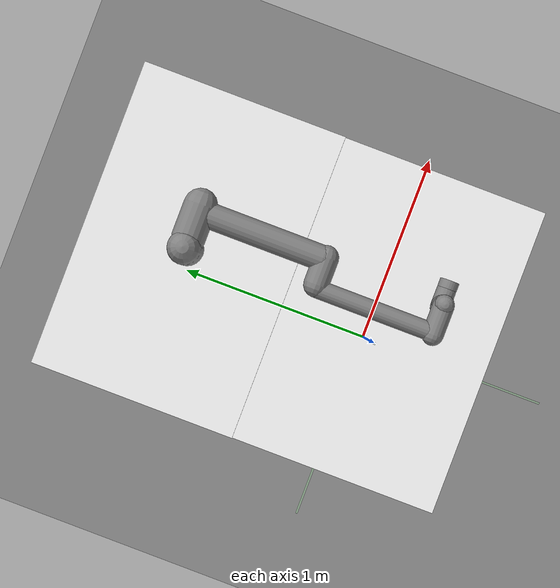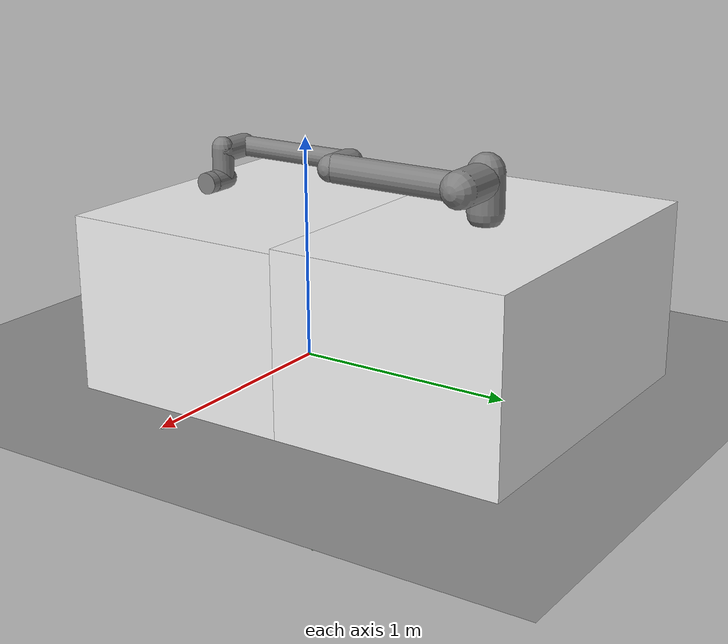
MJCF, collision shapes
<?xml version="1.0" encoding="utf-8"?>
<mujoco>
	<compiler angle="radian" coordinate="local" meshdir="meshes" texturedir="textures" autolimits="true"></compiler>
	<option timestep="0.002">
		<flag warmstart="enable"></flag>
	</option>

	<include file="shared.xml"></include>

	<include file="ur10e.xml"></include>

	<worldbody>
		<geom name="floor0" pos="0 0 0" size="10 10 1" type="plane" condim="3" material="floor_mat"></geom>
		<body name="floor0" pos="0 0 0">
			<site name="target0" pos="0 0 0.5" size="0.02 0.04 0.02" rgba="1 0 0 1" type="cylinder">
			</site>
		</body>

		<body pos="0.100 0.950 0.390" name="table0">
			<geom size="0.75 0.5 0.390" type="box" mass="2000" material="table_mat"></geom>
		</body>

		<body pos="0.100 -0.050 0.380" name="table1">
			<geom size="0.75 0.5 0.380" type="box" mass="2000" material="table_mat"></geom>
		</body>

		<light directional="true" ambient="0.2 0.2 0.2" diffuse="0.8 0.8 0.8" specular="0.3 0.3 0.3" castshadow="false" pos="0 0 4" dir="0 0 -1" name="light0"></light>
	</worldbody>
</mujoco>

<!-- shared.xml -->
<mujoco>
    <asset>
        <texture type="skybox" builtin="gradient" rgb1="0.44 0.85 0.56" rgb2="0.46 0.87 0.58" width="32" height="32"></texture>
        <texture name="texture_block" file="block.png" gridsize="3 4" gridlayout=".U..LFRB.D.."></texture>

        <material name="floor_mat" specular="0" shininess="0.5" reflectance="0" rgba="0.2 0.2 0.2 1"></material>
        <material name="table_mat" specular="0" shininess="0.5" reflectance="0" rgba="0.93 0.93 0.93 1"></material>
        <material name="block_mat" specular="0" shininess="0.5" reflectance="0" rgba="0.2 0.2 0.2 1"></material>
        <material name="puck_mat" specular="0" shininess="0.5" reflectance="0" rgba="0.2 0.2 0.2 1"></material>
        <material name="robot0:geomMat" shininess="0.03" specular="0.4"></material>
        <material name="robot0:gripper_finger_mat" shininess="0.03" specular="0.4" reflectance="0"></material>
        <material name="robot0:gripper_mat" shininess="0.03" specular="0.4" reflectance="0"></material>
        <material name="robot0:arm_mat" shininess="0.03" specular="0.4" reflectance="0"></material>
        <material name="robot0:head_mat" shininess="0.03" specular="0.4" reflectance="0"></material>
        <material name="robot0:torso_mat" shininess="0.03" specular="0.4" reflectance="0"></material>
        <material name="robot0:base_mat" shininess="0.03" specular="0.4" reflectance="0"></material>

    </asset>

    <equality>
        <weld body1="robot0:mocap" body2="eef" solimp="0.9 0.95 0.001" solref="0.02 1"></weld>
    </equality>

</mujoco>

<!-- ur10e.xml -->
<mujoco model="ur10e">

  <option integrator="implicitfast"/>

  <default>
    <default class="ur10e">
      <material specular="0.5" shininess="0.25"/>
      <joint axis="0 1 0" range="-6.28319 6.28319" armature="0.1"/>
      <position ctrlrange="-6.2831 6.2831"/>
      <general biastype="affine" ctrlrange="-6.2831 6.2831" gainprm="5000" biasprm="0 -5000 -500"/>
      <default class="size4">
        <joint damping="10"/>
        <general forcerange="-330 330"/>
      </default>
      <default class="size3">
        <joint damping="5"/>
        <general forcerange="-150 150"/>
        <default class="size3_limited">
          <joint range="-3.1415 3.1415"/>
          <general ctrlrange="-3.1415 3.1415"/>
        </default>
      </default>
      <default class="size2">
        <joint damping="2"/>
        <general forcerange="-56 56"/>
      </default>
      <default class="visual">
        <geom type="mesh" contype="0" conaffinity="0" group="2"/>
      </default>
      <default class="collision">
        <geom type="capsule" group="3"/>
        <default class="eef_collision">
          <geom type="cylinder"/>
        </default>
      </default>
      <site size="0.001" rgba="0.5 0.5 0.5 0.3" group="4"/>
    </default>
  </default>

  <asset>
    <material class="ur10e" name="black" rgba="0.033 0.033 0.033 1"/>
    <material class="ur10e" name="jointgray" rgba="0.278 0.278 0.278 1"/>
    <material class="ur10e" name="linkgray" rgba="0.82 0.82 0.82 1"/>
    <material class="ur10e" name="urblue" rgba="0.49 0.678 0.8 1"/>

    <mesh file="ur10e/base_0.obj" name="base_0"/>
    <mesh file="ur10e/base_1.obj" name="base_1"/>
    <mesh file="ur10e/shoulder_0.obj" name="shoulder_0"/>
    <mesh file="ur10e/shoulder_1.obj" name="shoulder_1"/>
    <mesh file="ur10e/shoulder_2.obj" name="shoulder_2"/>
    <mesh file="ur10e/upperarm_0.obj" name="upperarm_0"/>
    <mesh file="ur10e/upperarm_1.obj" name="upperarm_1"/>
    <mesh file="ur10e/upperarm_2.obj" name="upperarm_2"/>
    <mesh file="ur10e/upperarm_3.obj" name="upperarm_3"/>
    <mesh file="ur10e/forearm_0.obj" name="forearm_0"/>
    <mesh file="ur10e/forearm_1.obj" name="forearm_1"/>
    <mesh file="ur10e/forearm_2.obj" name="forearm_2"/>
    <mesh file="ur10e/forearm_3.obj" name="forearm_3"/>
    <mesh file="ur10e/wrist1_0.obj" name="wrist1_0"/>
    <mesh file="ur10e/wrist1_1.obj" name="wrist1_1"/>
    <mesh file="ur10e/wrist1_2.obj" name="wrist1_2"/>
    <mesh file="ur10e/wrist2_0.obj" name="wrist2_0"/>
    <mesh file="ur10e/wrist2_1.obj" name="wrist2_1"/>
    <mesh file="ur10e/wrist2_2.obj" name="wrist2_2"/>
    <mesh file="ur10e/wrist3.obj" name="wrist3"/>
  </asset>

  <worldbody>
    <body mocap="true" name="robot0:mocap" pos="0 0 0">
      <geom conaffinity="0" contype="0" pos="0 0 0" rgba="0 0.5 0 0.7" size="0.005 0.005 0.005" type="box"></geom>
      <geom conaffinity="0" contype="0" pos="0 0 0" rgba="0 0.5 0 0.1" size="1 0.005 0.005" type="box"></geom>
      <geom conaffinity="0" contype="0" pos="0 0 0" rgba="0 0.5 0 0.1" size="0.005 1 0.001" type="box"></geom>
      <geom conaffinity="0" contype="0" pos="0 0 0" rgba="0 0.5 0 0.1" size="0.005 0.005 1" type="box"></geom>
    </body>
    <light name="spotlight" mode="targetbodycom" target="wrist_2_link" pos="0 -1 2"/>
    <body name="base" pos="0.100 0.950 0.780" quat="-0.707 0.000 0.000 0.707" childclass="ur10e">
      <inertial mass="4.0" pos="0 0 0" diaginertia="0.0061063308908 0.0061063308908 0.01125"/>
      <geom mesh="base_0" material="black" class="visual"/>
      <geom mesh="base_1" material="jointgray" class="visual"/>
      <body name="shoulder_link" pos="0 0 0.181">
        <inertial pos="0 0 0" mass="7.778" diaginertia="0.0314743 0.0314743 0.0218756"/>
        <joint name="shoulder_pan_joint" class="size4" axis="0 0 1"/>
        <geom mesh="shoulder_0" material="urblue" class="visual"/>
        <geom mesh="shoulder_1" material="black" class="visual"/>
        <geom mesh="shoulder_2" material="jointgray" class="visual"/>
        <geom class="collision" size="0.078 0.08" pos="0 0 -0.05"/>
        <body name="upper_arm_link" pos="0 0.176 0" quat="1 0 1 0">
          <inertial pos="0 0 0.3065" mass="12.93" diaginertia="0.423074 0.423074 0.0363656"/>
          <joint name="shoulder_lift_joint" class="size4"/>
          <geom mesh="upperarm_0" material="black" class="visual"/>
          <geom mesh="upperarm_1" material="jointgray" class="visual"/>
          <geom mesh="upperarm_2" material="urblue" class="visual"/>
          <geom mesh="upperarm_3" material="linkgray" class="visual"/>
          <geom class="collision" pos="0 -0.05 0" quat="1 1 0 0" size="0.078 0.08"/>
          <geom class="collision" size="0.06 0.3" pos="0 0 0.3"/>
          <body name="forearm_link" pos="0 -0.137 0.613">
            <inertial pos="0 0 0.2855" mass="3.87" diaginertia="0.11059 0.11059 0.0108844"/>
            <joint name="elbow_joint" class="size3_limited"/>
            <geom mesh="forearm_0" material="urblue" class="visual"/>
            <geom mesh="forearm_1" material="black" class="visual"/>
            <geom mesh="forearm_2" material="jointgray" class="visual"/>
            <geom mesh="forearm_3" material="linkgray" class="visual"/>
            <geom class="collision" pos="0 0.08 0" quat="1 1 0 0" size="0.058 0.065"/>
            <geom class="collision" size="0.043 0.28" pos="0 0 0.29"/>
            <body name="wrist_1_link" pos="0 0 0.571" quat="1 0 1 0">
              <inertial pos="0 0.135 0" quat="0.5 0.5 -0.5 0.5" mass="1.96"
                diaginertia="0.0055125 0.00510825 0.00510825"/>
              <joint name="wrist_1_joint" class="size2"/>
              <geom mesh="wrist1_0" material="black" class="visual"/>
              <geom mesh="wrist1_1" material="urblue" class="visual"/>
              <geom mesh="wrist1_2" material="jointgray" class="visual"/>
              <geom class="collision" pos="0 0.06 0" quat="1 1 0 0" size="0.05 0.07"/>
              <body name="wrist_2_link" pos="0 0.135 0">
                <inertial pos="0 0 0.12" quat="0.5 0.5 -0.5 0.5" mass="1.96"
                  diaginertia="0.0055125 0.00510825 0.00510825"/>
                <joint name="wrist_2_joint" axis="0 0 1" class="size2"/>
                <geom mesh="wrist2_0" material="black" class="visual"/>
                <geom mesh="wrist2_1" material="urblue" class="visual"/>
                <geom mesh="wrist2_2" material="jointgray" class="visual"/>
                <geom class="collision" size="0.046 0.065" pos="0 0 0.05"/>
                <geom class="collision" pos="0 0.028 0.12" quat="1 1 0 0" size="0.046 0.043"/>
                <body name="wrist_3_link" pos="0 0 0.12">
                  <inertial pos="0 0.092 0" quat="0 1 -1 0" mass="0.202"
                    diaginertia="0.000204525 0.000144346 0.000144346"/>
                  <joint name="wrist_3_joint" class="size2"/>
                  <geom material="linkgray" mesh="wrist3" class="visual"/>
                  <geom class="eef_collision" pos="0 0.097 0" quat="1 1 0 0" size="0.046 0.02"/>
                  <site name="attachment_site" pos="0 0.1 0" quat="-1 1 0 0"/>
                  <body name="tool0_link" pos="0 0.11 0" quat="1 -1 0 0 ">
                  </body>
                </body>
              </body>
            </body>
          </body>
        </body>
      </body>
    </body>
  </worldbody>

  <actuator>
    <general class="size4" name="shoulder_pan" joint="shoulder_pan_joint"/>
    <general class="size4" name="shoulder_lift" joint="shoulder_lift_joint"/>
    <general class="size3_limited" name="elbow" joint="elbow_joint"/>
    <general class="size2" name="wrist_1" joint="wrist_1_joint"/>
    <general class="size2" name="wrist_2" joint="wrist_2_joint"/>
    <general class="size2" name="wrist_3" joint="wrist_3_joint"/>
  </actuator>

</mujoco>
